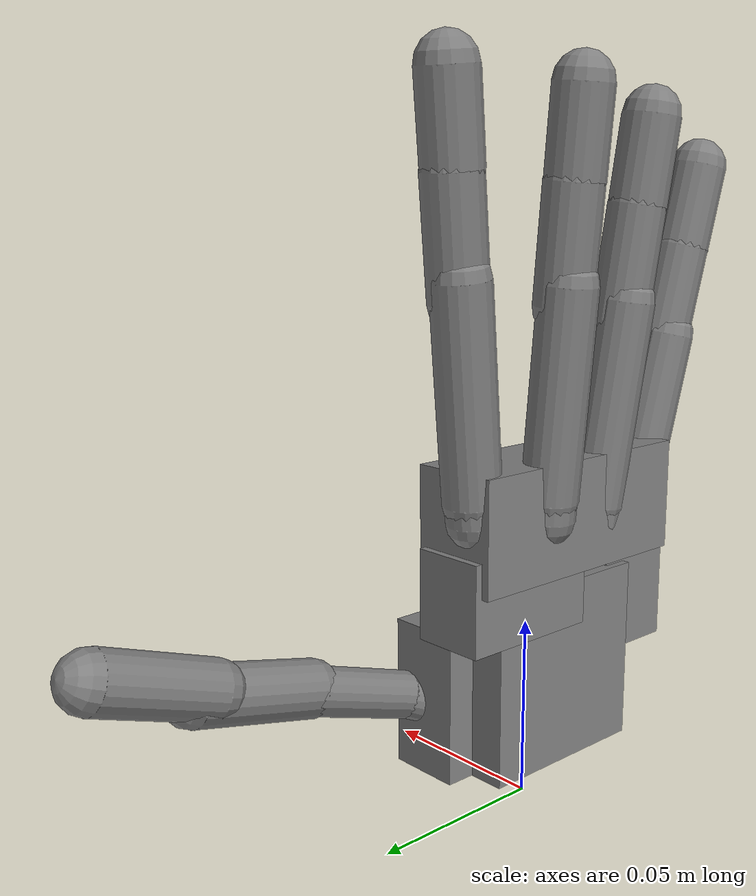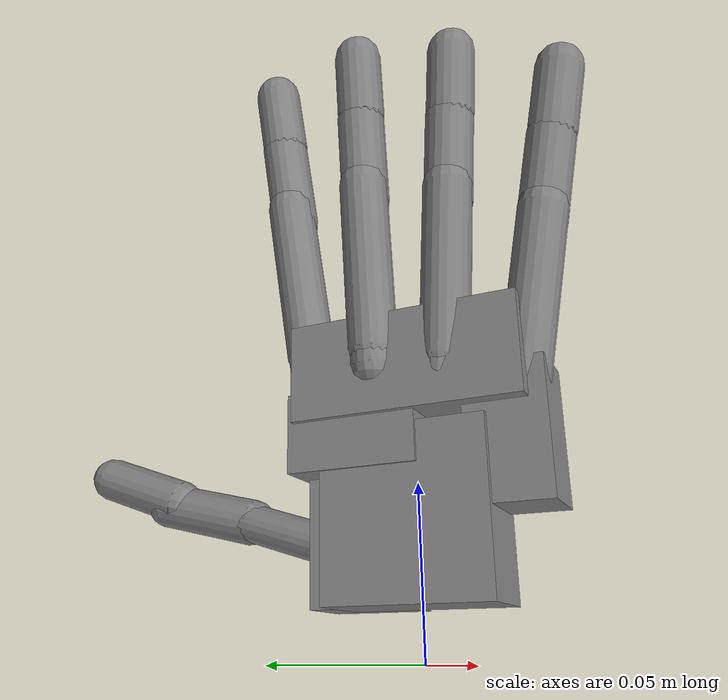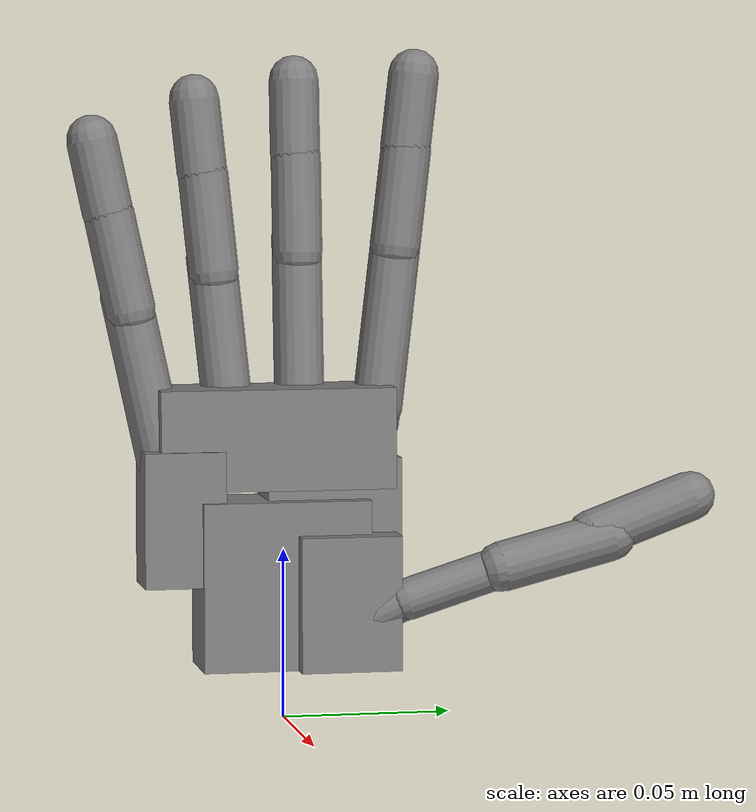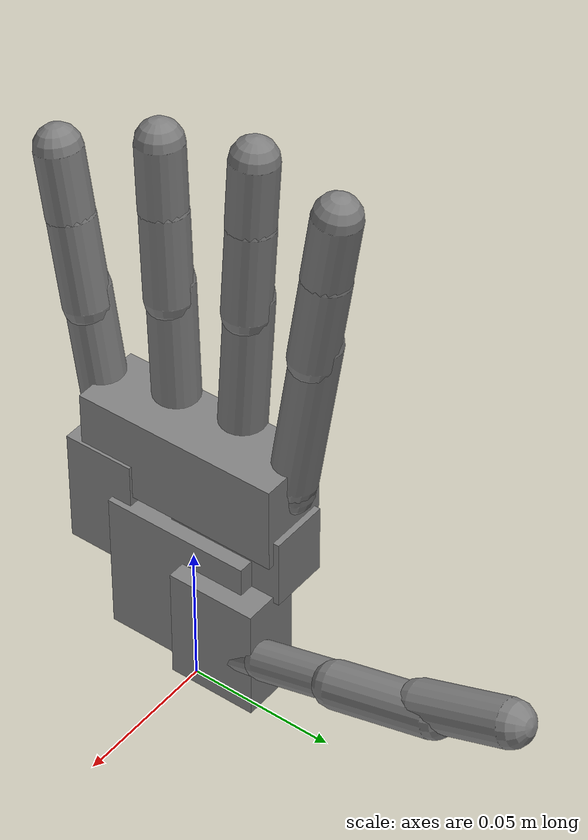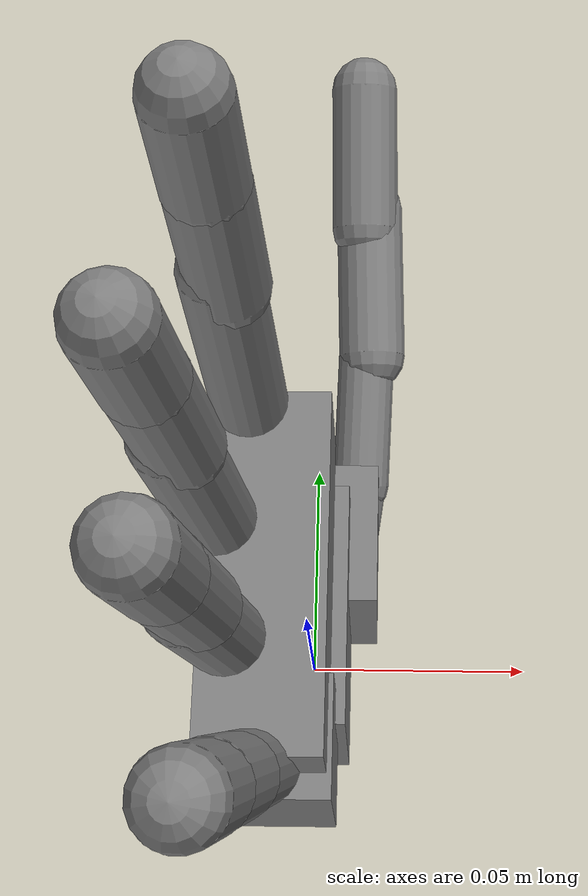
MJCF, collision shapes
<mujoco model="wujihand-right-mjx">
  <compiler angle="radian" meshdir="../meshes/right/" />

    <option timestep="0.01" integrator="Euler" iterations="5" ls_iterations="8">
    <flag eulerdamp="disable"/>
  </option>

  <custom>
    <numeric data="20" name="max_contact_points"/>
    <numeric data="16" name="max_geom_pairs"/>
  </custom>

    <default>
    <geom group="3" friction="0.2" solref="0.02 1.5" solimp="0.9 0.95 0.001" priority="1"/>
    <joint axis="0 0 1" damping="0" armature="0.0002"/>
  </default>

  <asset>
    <mesh name="right_palm_link" content_type="model/stl" file="right_palm_link.STL" />
    <mesh name="right_finger1_link1" content_type="model/stl" file="right_finger1_link1.STL" />
    <mesh name="right_finger1_link2" content_type="model/stl" file="right_finger1_link2.STL" />
    <mesh name="right_finger1_link3" content_type="model/stl" file="right_finger1_link3.STL" />
    <mesh name="right_finger1_link4" content_type="model/stl" file="right_finger1_link4.STL" />
    <mesh name="right_finger1_tip_link" content_type="model/stl" file="right_finger1_tip_link.STL" />
    <mesh name="right_finger2_link1" content_type="model/stl" file="right_finger2_link1.STL" />
    <mesh name="right_finger2_link2" content_type="model/stl" file="right_finger2_link2.STL" />
    <mesh name="right_finger2_link3" content_type="model/stl" file="right_finger2_link3.STL" />
    <mesh name="right_finger2_link4" content_type="model/stl" file="right_finger2_link4.STL" />
    <mesh name="right_finger2_tip_link" content_type="model/stl" file="right_finger2_tip_link.STL" />
    <mesh name="right_finger3_link1" content_type="model/stl" file="right_finger3_link1.STL" />
    <mesh name="right_finger3_link2" content_type="model/stl" file="right_finger3_link2.STL" />
    <mesh name="right_finger3_link3" content_type="model/stl" file="right_finger3_link3.STL" />
    <mesh name="right_finger3_link4" content_type="model/stl" file="right_finger3_link4.STL" />
    <mesh name="right_finger3_tip_link" content_type="model/stl" file="right_finger3_tip_link.STL" />
    <mesh name="right_finger4_link1" content_type="model/stl" file="right_finger4_link1.STL" />
    <mesh name="right_finger4_link2" content_type="model/stl" file="right_finger4_link2.STL" />
    <mesh name="right_finger4_link3" content_type="model/stl" file="right_finger4_link3.STL" />
    <mesh name="right_finger4_link4" content_type="model/stl" file="right_finger4_link4.STL" />
    <mesh name="right_finger4_tip_link" content_type="model/stl" file="right_finger4_tip_link.STL" />
    <mesh name="right_finger5_link1" content_type="model/stl" file="right_finger5_link1.STL" />
    <mesh name="right_finger5_link2" content_type="model/stl" file="right_finger5_link2.STL" />
    <mesh name="right_finger5_link3" content_type="model/stl" file="right_finger5_link3.STL" />
    <mesh name="right_finger5_link4" content_type="model/stl" file="right_finger5_link4.STL" />
    <mesh name="right_finger5_tip_link" content_type="model/stl" file="right_finger5_tip_link.STL" />
  </asset>

  <worldbody>
    <body name="right_palm_link"><inertial pos="-0.00297947143114252 0.000455717622711663 0.0366540864104669" mass="0.16914" quat="-0.01772809 -0.04274722 0.09308295 0.99458230" diaginertia="1.40677446e-04 9.58896475e-05 5.81329061e-05" /><geom type="mesh" contype="0" conaffinity="0" group="1" density="0" rgba="0.6 0.8 0.9 1" mesh="right_palm_link" />
          <geom name="right_palm_main" type="box" pos="-0.006 -0.002 0.083" size="0.012 0.035 0.015" friction="0.7"/>
      <geom name="right_palm_lower" type="box" pos="-0.003 0.0 0.04" size="0.012 0.025 0.025" friction="0.7"/>
      <geom name="right_palm_thumb" type="box" pos="0.005 0.018 0.035" size="0.010 0.015 0.020" friction="0.7"/>
      <geom name="right_palm_upper" type="box" pos="-0.006 0.015 0.065" size="0.010 0.020 0.012" friction="0.7"/>
      <geom name="right_palm_pinky" type="box" pos="-0.003 -0.030 0.060" size="0.010 0.012 0.020" friction="0.7"/>
    <body name="right_finger1_link1" pos="0.00843985 0.0205866 0.0288928" quat="0.682211 -0.617678 0.0805082 -0.382859">
      <inertial pos="-0.00246282 -0.00124281 0.00778015" quat="0.904243 0.21652 0.0443878 -0.365368" mass="0.0075" diaginertia="3.37599e-07 3.01198e-07 2.11203e-07" />
      <joint name="right_finger1_joint1" pos="0 0 0" axis="0 1 0" range="0.0368 1.6125" actuatorfrcrange="-0.4452 0.4452" armature="0.0005" />
      <geom type="mesh" contype="0" conaffinity="0" group="1" density="0" rgba="0.7 0.7 0.7 1" mesh="right_finger1_link1" />
            <geom name="right_finger1_link1_col" type="capsule" size="0.006" fromto="0 0 0 -0.005 -0.006 0.014"/>
      <body name="right_finger1_link2" pos="-0.0047549 -0.00581914 0.0141321" quat="0.726254 0.29085 -0.0855876 -0.616957">
        <inertial pos="-0.00116284 1.22067e-05 0.0156645" quat="0.815906 0.0024483 -0.00462559 0.57816" mass="0.0248" diaginertia="2.81725e-06 2.75299e-06 6.79766e-07" />
        <joint name="right_finger1_joint2" pos="0 0 0" axis="0 1 0" range="-0.1576 0.9312" actuatorfrcrange="-0.4259 0.4259" armature="0.0005" />
        <geom type="mesh" contype="0" conaffinity="0" group="1" density="0" rgba="0.9 0.8 0.6 1" mesh="right_finger1_link2" />
              <geom name="right_finger1_link2_col" type="capsule" size="0.0063" fromto="0 0 0 0 0.001 0.035"/>
        <body name="right_finger1_link3" pos="-0.00026671 0.000991502 0.0346656" quat="0.815739 0.0150036 0.0212382 0.577836">
          <inertial pos="-0.00112353 -1.57896e-05 0.0130562" quat="0.999951 0 0.00989566 0" mass="0.0165" diaginertia="1.4604e-06 1.42e-06 4.49604e-07" />
          <joint name="right_finger1_joint3" pos="0 0 0" axis="0 1 0" range="-0.4638 1.5607" actuatorfrcrange="-0.1888 0.1888" />
          <geom type="mesh" contype="0" conaffinity="0" group="1" density="0" rgba="0.6 0.8 0.9 1" mesh="right_finger1_link3" />
                <geom name="right_finger1_link3_col" type="capsule" size="0.0075" fromto="0.001149 0.000087 -0.004967 -0.001675 0.00244 0.029351"/>
          <body name="right_finger1_link4" pos="0 0.0002 0.0295">
            <inertial pos="-0.00158018 -0.000195004 0.0113497" quat="0.70461 -0.0483742 -0.0463361 0.706426" mass="0.0206" diaginertia="2.59896e-06 2.57899e-06 7.60001e-07" />
            <joint name="right_finger1_joint4" pos="0 0 0" axis="0 1 0" range="-0.4829 1.5451" actuatorfrcrange="-0.1468 0.1468" />
            <geom type="mesh" contype="0" conaffinity="0" group="1" density="0" rgba="0.6 0.8 0.9 1" mesh="right_finger1_link4" />
                  <geom name="right_finger1_link4_col" type="capsule" size="0.0075" fromto="-0.001 0 -0.005 -0.001 0 0.027" friction="0.7"/>
            <geom pos="-0.00105 -0.0002 0.0273" type="mesh" contype="0" conaffinity="0" group="1" density="0" rgba="0.6 0.8 0.9 1" mesh="right_finger1_tip_link" />

          </body>
        </body>
      </body>
    </body>
    <body name="right_finger2_link1" pos="-0.00587009 0.0294339 0.0919165" quat="0.991689 -0.0588292 -0.0292755 -0.110616">
      <inertial pos="-0.00132915 -3.29106e-08 0.000319873" quat="0.92388 0 0.382683 0" mass="0.0032" diaginertia="1.1e-07 7e-08 5e-08" />
      <joint name="right_finger2_joint1" pos="0 0 0" axis="0 1 0" range="-0.1611 1.5588" actuatorfrcrange="-0.6188 0.6188" armature="0.0005" />
      <geom type="mesh" contype="0" conaffinity="0" group="1" density="0" rgba="0.7 0.7 0.7 1" mesh="right_finger2_link1" />
            <geom name="right_finger2_link1_col" type="capsule" size="0.007" fromto="-0.004 0 -0.006 -0.004 0 0.008"/>
      <body name="right_finger2_link2" pos="0.0022 0 0.00400001" quat="0.707107 0 0 0.707107">
        <inertial pos="-4.1182e-07 0.00615772 0.0209112" quat="0.70703 0.0104245 0.0104245 0.70703" mass="0.033" diaginertia="6.34e-06 6.31472e-06 8.85281e-07" />
        <joint name="right_finger2_joint2" pos="0 0 0" axis="0 1 0" range="-0.4044 0.3054" actuatorfrcrange="-0.1822 0.1822" />
        <geom type="mesh" contype="0" conaffinity="0" group="1" density="0" rgba="0.9 0.8 0.6 1" mesh="right_finger2_link2" />
              <geom name="right_finger2_link2_col" type="capsule" size="0.0075" fromto="0 0.006 -0.005 0 0.006 0.049"/>
        <body name="right_finger2_link3" pos="0 0.00475028 0.0436177" quat="0.707012 0 0 -0.707202">
          <inertial pos="-0.00112142 4.36128e-06 0.0157628" quat="0.999892 0 -0.0146884 0" mass="0.0165" diaginertia="1.47088e-06 1.44e-06 4.49118e-07" />
          <joint name="right_finger2_joint3" pos="0 0 0" axis="0 1 0" range="-0.4714 1.5504" actuatorfrcrange="-0.2251 0.2251" />
          <geom type="mesh" contype="0" conaffinity="0" group="1" density="0" rgba="0.6 0.8 0.9 1" mesh="right_finger2_link3" />
                <geom name="right_finger2_link3_col" type="capsule" size="0.0075" fromto="0 0 0 0 0 0.0295"/>
          <body name="right_finger2_link4" pos="0 -0.0002 0.0295">
            <inertial pos="-0.000803077 -1.67703e-05 0.00770942" quat="0.998113 0.0132268 -0.0537103 0.0266451" mass="0.01718" diaginertia="1.58809e-06 1.49171e-06 4.20573e-07" />
            <joint name="right_finger2_joint4" pos="0 0 0" axis="0 1 0" range="-0.4644 1.5753" actuatorfrcrange="-0.217 0.217" />
            <geom type="mesh" contype="0" conaffinity="0" group="1" density="0" rgba="0.6 0.8 0.9 1" mesh="right_finger2_link4" />
                  <geom name="right_finger2_link4_col" type="capsule" size="0.0075" fromto="0 0 0 0 0 0.022" friction="0.7"/>
            <geom pos="-0.00105 0.0002 0.0267" type="mesh" contype="0" conaffinity="0" group="1" density="0" rgba="0.6 0.8 0.9 1" mesh="right_finger2_tip_link" />

          </body>
        </body>
      </body>
    </body>
    <body name="right_finger3_link1" pos="-0.0104597 0.00746146 0.0895435" quat="0.999048 -1.2685e-05 -0.0436194 0.000290548">
      <inertial pos="-0.00132914 3.4987e-09 0.000319937" quat="0.92388 0 0.382683 0" mass="0.0032" diaginertia="1.1e-07 7e-08 5e-08" />
      <joint name="right_finger3_joint1" pos="0 0 0" axis="0 1 0" range="-0.1719 1.5496" actuatorfrcrange="-0.6494 0.6494" armature="0.0005" />
      <geom type="mesh" contype="0" conaffinity="0" group="1" density="0" rgba="0.7 0.7 0.7 1" mesh="right_finger3_link1" />
            <geom name="right_finger3_link1_col" type="capsule" size="0.007" fromto="-0.004 0 -0.006 -0.004 0 0.008"/>
      <body name="right_finger3_link2" pos="0.0022 0 0.00400001" quat="0.707107 0 0 0.707107">
        <inertial pos="-4.16442e-07 0.00615758 0.0209112" quat="0.70703 0.0104245 0.0104245 0.70703" mass="0.033" diaginertia="6.34e-06 6.31472e-06 8.85281e-07" />
        <joint name="right_finger3_joint2" pos="0 0 0" axis="0 1 0" range="-0.4014 0.2996" actuatorfrcrange="-0.1827 0.1827" />
        <geom type="mesh" contype="0" conaffinity="0" group="1" density="0" rgba="0.9 0.8 0.6 1" mesh="right_finger3_link2" />
              <geom name="right_finger3_link2_col" type="capsule" size="0.0075" fromto="0 0.006 -0.005 0 0.006 0.049"/>
        <body name="right_finger3_link3" pos="0 0.00475 0.0436177" quat="0.707012 0 0 -0.707202">
          <inertial pos="-0.00112142 4.33099e-06 0.0157628" quat="0.999892 0 -0.0146884 0" mass="0.0165" diaginertia="1.47088e-06 1.44e-06 4.49118e-07" />
          <joint name="right_finger3_joint3" pos="0 0 0" axis="0 1 0" range="-0.4632 1.5613" actuatorfrcrange="-0.2078 0.2078" />
          <geom type="mesh" contype="0" conaffinity="0" group="1" density="0" rgba="0.6 0.8 0.9 1" mesh="right_finger3_link3" />
                <geom name="right_finger3_link3_col" type="capsule" size="0.0075" fromto="0 0 0 0 0 0.0295"/>
          <body name="right_finger3_link4" pos="0 -0.0002 0.0295">
            <inertial pos="-0.000801144 -1.7052e-05 0.00761196" quat="0.998033 0.0128625 -0.0554378 0.0263073" mass="0.01718" diaginertia="1.55453e-06 1.45763e-06 4.20205e-07" />
            <joint name="right_finger3_joint4" pos="0 0 0" axis="0 1 0" range="-0.4697 1.5702" actuatorfrcrange="-0.2018 0.2018" />
            <geom type="mesh" contype="0" conaffinity="0" group="1" density="0" rgba="0.6 0.8 0.9 1" mesh="right_finger3_link4" />
                  <geom name="right_finger3_link4_col" type="capsule" size="0.0075" fromto="0 0 0 0 0 0.022" friction="0.7"/>
            <geom pos="-0.00104909 0.00020104 0.0267" type="mesh" contype="0" conaffinity="0" group="1" density="0" rgba="0.6 0.8 0.9 1" mesh="right_finger3_tip_link" />

          </body>
        </body>
      </body>
    </body>
    <body name="right_finger4_link1" pos="-0.00766486 -0.0137122 0.0844287" quat="0.997789 0.0461017 -0.0405881 0.0254">
      <inertial pos="-0.00132914 1.00475e-08 0.000319948" quat="0.92388 0 0.382683 0" mass="0.0032" diaginertia="1.1e-07 7e-08 5e-08" />
      <joint name="right_finger4_joint1" pos="0 0 0" axis="0 1 0" range="-0.1601 1.5534" actuatorfrcrange="-0.6389 0.6389" armature="0.0005" />
      <geom type="mesh" contype="0" conaffinity="0" group="1" density="0" rgba="0.7 0.7 0.7 1" mesh="right_finger4_link1" />
            <geom name="right_finger4_link1_col" type="capsule" size="0.007" fromto="-0.004 0 -0.006 -0.004 0 0.008"/>
      <body name="right_finger4_link2" pos="0.0022 0 0.00400001" quat="0.707107 0 0 0.707107">
        <inertial pos="-4.16197e-07 0.00615758 0.0209112" quat="0.70703 0.0104245 0.0104245 0.70703" mass="0.033" diaginertia="6.34e-06 6.31472e-06 8.85281e-07" />
        <joint name="right_finger4_joint2" pos="0 0 0" axis="0 1 0" range="-0.4134 0.3161" actuatorfrcrange="-0.1832 0.1832" />
        <geom type="mesh" contype="0" conaffinity="0" group="1" density="0" rgba="0.9 0.8 0.6 1" mesh="right_finger4_link2" />
              <geom name="right_finger4_link2_col" type="capsule" size="0.0075" fromto="0 0.006 -0.005 0 0.006 0.049"/>
        <body name="right_finger4_link3" pos="0 0.00475 0.0436177" quat="0.707012 0 0 -0.707202">
          <inertial pos="-0.00112141 4.34937e-06 0.0157628" quat="0.999892 0 -0.0146884 0" mass="0.0165" diaginertia="1.47088e-06 1.44e-06 4.49118e-07" />
          <joint name="right_finger4_joint3" pos="0 0 0" axis="0 1 0" range="-0.4782 1.5448" actuatorfrcrange="-0.2249 0.2249" />
          <geom type="mesh" contype="0" conaffinity="0" group="1" density="0" rgba="0.6 0.8 0.9 1" mesh="right_finger4_link3" />
                <geom name="right_finger4_link3_col" type="capsule" size="0.0075" fromto="0 0 0 0 0 0.0295"/>
          <body name="right_finger4_link4" pos="0 -0.0002 0.0295">
            <inertial pos="-0.000801413 -2.37496e-05 0.00770949" quat="0.998083 0.0137537 -0.0536109 0.0276923" mass="0.01718" diaginertia="1.58832e-06 1.49181e-06 4.20836e-07" />
            <joint name="right_finger4_joint4" pos="0 0 0" axis="0 1 0" range="-0.4825 1.555" actuatorfrcrange="-0.2044 0.2044" />
            <geom type="mesh" contype="0" conaffinity="0" group="1" density="0" rgba="0.6 0.8 0.9 1" mesh="right_finger4_link4" />
                  <geom name="right_finger4_link4_col" type="capsule" size="0.0075" fromto="0 0 0 0 0 0.022" friction="0.7"/>
            <geom pos="-0.00105961 0.000190451 0.0267" type="mesh" contype="0" conaffinity="0" group="1" density="0" rgba="0.6 0.8 0.9 1" mesh="right_finger4_tip_link" />

          </body>
        </body>
      </body>
    </body>
    <body name="right_finger5_link1" pos="-0.00226865 -0.0340011 0.0742813" quat="0.990869 0.0993173 -0.0383255 0.0827362">
      <inertial pos="-0.00132914 1.72348e-08 0.000319969" quat="0.92388 0 0.382683 0" mass="0.0032" diaginertia="1.1e-07 7e-08 5e-08" />
      <joint name="right_finger5_joint1" pos="0 0 0" axis="0 1 0" range="-0.1674 1.5539" actuatorfrcrange="-0.6441 0.6441" armature="0.0005" />
      <geom type="mesh" contype="0" conaffinity="0" group="1" density="0" rgba="0.7 0.7 0.7 1" mesh="right_finger5_link1" />
            <geom name="right_finger5_link1_col" type="capsule" size="0.007" fromto="-0.004 0 -0.006 -0.004 0 0.008"/>
      <body name="right_finger5_link2" pos="0.0022 0 0.00400001" quat="0.707107 0 0 0.707107">
        <inertial pos="-4.14939e-07 0.00615759 0.0209112" quat="0.70703 0.0104245 0.0104245 0.70703" mass="0.033" diaginertia="6.34e-06 6.31472e-06 8.85281e-07" />
        <joint name="right_finger5_joint2" pos="0 0 0" axis="0 1 0" range="-0.4203 0.2931" actuatorfrcrange="-0.1798 0.1798" />
        <geom type="mesh" contype="0" conaffinity="0" group="1" density="0" rgba="0.9 0.8 0.6 1" mesh="right_finger5_link2" />
              <geom name="right_finger5_link2_col" type="capsule" size="0.0075" fromto="0 0.006 -0.005 0 0.006 0.049"/>
        <body name="right_finger5_link3" pos="0 0.00475 0.0436177" quat="0.707012 0 0 -0.707202">
          <inertial pos="-0.00112141 4.37031e-06 0.0157628" quat="0.999892 0 -0.0146884 0" mass="0.0165" diaginertia="1.47088e-06 1.44e-06 4.49118e-07" />
          <joint name="right_finger5_joint3" pos="0 0 0" axis="0 1 0" range="-0.4804 1.542" actuatorfrcrange="-0.2384 0.2384" />
          <geom type="mesh" contype="0" conaffinity="0" group="1" density="0" rgba="0.6 0.8 0.9 1" mesh="right_finger5_link3" />
                <geom name="right_finger5_link3_col" type="capsule" size="0.0075" fromto="0 0 0 0 0 0.0295"/>
          <body name="right_finger5_link4" pos="0 -0.0002 0.0295">
            <inertial pos="-0.000805572 -1.62002e-05 0.0077094" quat="0.998111 0.0131911 -0.0538918 0.0263751" mass="0.01718" diaginertia="1.58815e-06 1.49167e-06 4.20431e-07" />
            <joint name="right_finger5_joint4" pos="0 0 0" axis="0 1 0" range="-0.4705 1.5709" actuatorfrcrange="-0.1866 0.1866" />
            <geom type="mesh" contype="0" conaffinity="0" group="1" density="0" rgba="0.6 0.8 0.9 1" mesh="right_finger5_link4" />
                  <geom name="right_finger5_link4_col" type="capsule" size="0.0075" fromto="0 0 0 0 0 0.022" friction="0.7"/>
            <geom pos="-0.00104464 0.00021131 0.0267" type="mesh" contype="0" conaffinity="0" group="1" density="0" rgba="0.6 0.8 0.9 1" mesh="right_finger5_tip_link" />

          </body>
        </body>
      </body>
    </body>
  </body></worldbody>

  <contact>
    <exclude body1="right_palm_link" body2="right_finger1_link1"/>
    <exclude body1="right_palm_link" body2="right_finger2_link1"/>
    <exclude body1="right_palm_link" body2="right_finger3_link1"/>
    <exclude body1="right_palm_link" body2="right_finger4_link1"/>
    <exclude body1="right_palm_link" body2="right_finger5_link1"/>
    <exclude body1="right_palm_link" body2="right_finger1_link2"/>
    <exclude body1="right_palm_link" body2="right_finger2_link2"/>
    <exclude body1="right_palm_link" body2="right_finger3_link2"/>
    <exclude body1="right_palm_link" body2="right_finger4_link2"/>
    <exclude body1="right_palm_link" body2="right_finger5_link2"/>
    <exclude body1="right_finger2_link1" body2="right_finger3_link1"/>
    <exclude body1="right_finger3_link1" body2="right_finger4_link1"/>
    <exclude body1="right_finger4_link1" body2="right_finger5_link1"/>
  </contact>
  <actuator>
    <position name="right_finger1_joint1_actuator" joint="right_finger1_joint1" kp="0.40844710645048043" kv="0.020882010257063675" ctrlrange="0.0368 1.613" forcerange="-0.4452 0.4452" />
    <position name="right_finger1_joint2_actuator" joint="right_finger1_joint2" kp="0.6858601063643346" kv="0.030610939996373314" ctrlrange="-0.1576 0.9312" forcerange="-0.4259 0.4259" />
    <position name="right_finger1_joint3_actuator" joint="right_finger1_joint3" kp="0.2391112196099482" kv="0.010181475050560962" ctrlrange="-0.4638 1.561" forcerange="-0.1888 0.1888" />
    <position name="right_finger1_joint4_actuator" joint="right_finger1_joint4" kp="0.20736128319711747" kv="0.00909698844675045" ctrlrange="-0.4829 1.545" forcerange="-0.1468 0.1468" />
    <position name="right_finger2_joint1_actuator" joint="right_finger2_joint1" kp="0.37352218155860073" kv="0.01882274330029718" ctrlrange="-0.1611 1.559" forcerange="-0.6188 0.6188" />
    <position name="right_finger2_joint2_actuator" joint="right_finger2_joint2" kp="0.45592448909027794" kv="0.019798167597016643" ctrlrange="-0.4044 0.3054" forcerange="-0.1822 0.1822" />
    <position name="right_finger2_joint3_actuator" joint="right_finger2_joint3" kp="0.24368366649522863" kv="0.010477031953162727" ctrlrange="-0.4714 1.55" forcerange="-0.2251 0.2251" />
    <position name="right_finger2_joint4_actuator" joint="right_finger2_joint4" kp="0.18026971340925335" kv="0.008240212147903584" ctrlrange="-0.4644 1.575" forcerange="-0.217 0.217" />
    <position name="right_finger3_joint1_actuator" joint="right_finger3_joint1" kp="0.3687093483646485" kv="0.01848622487024593" ctrlrange="-0.1719 1.55" forcerange="-0.6494 0.6494" />
    <position name="right_finger3_joint2_actuator" joint="right_finger3_joint2" kp="0.4164253443634641" kv="0.018032947229953678" ctrlrange="-0.4014 0.2996" forcerange="-0.1827 0.1827" />
    <position name="right_finger3_joint3_actuator" joint="right_finger3_joint3" kp="0.22218607502059182" kv="0.009592200014076666" ctrlrange="-0.4632 1.561" forcerange="-0.2078 0.2078" />
    <position name="right_finger3_joint4_actuator" joint="right_finger3_joint4" kp="0.19427606072023446" kv="0.009152994605972402" ctrlrange="-0.4697 1.57" forcerange="-0.2018 0.2018" />
    <position name="right_finger4_joint1_actuator" joint="right_finger4_joint1" kp="0.35718151495111794" kv="0.018376606800780005" ctrlrange="-0.1601 1.553" forcerange="-0.6389 0.6389" />
    <position name="right_finger4_joint2_actuator" joint="right_finger4_joint2" kp="0.42977315313086895" kv="0.01867700966212433" ctrlrange="-0.4134 0.3161" forcerange="-0.1832 0.1832" />
    <position name="right_finger4_joint3_actuator" joint="right_finger4_joint3" kp="0.24930151196247122" kv="0.01059512121009555" ctrlrange="-0.4782 1.545" forcerange="-0.2249 0.2249" />
    <position name="right_finger4_joint4_actuator" joint="right_finger4_joint4" kp="0.2285032688178066" kv="0.009917602877441107" ctrlrange="-0.4825 1.555" forcerange="-0.2044 0.2044" />
    <position name="right_finger5_joint1_actuator" joint="right_finger5_joint1" kp="0.3655325975433942" kv="0.018616960278988272" ctrlrange="-0.1674 1.554" forcerange="-0.6441 0.6441" />
    <position name="right_finger5_joint2_actuator" joint="right_finger5_joint2" kp="0.41393113081120425" kv="0.018732177029667153" ctrlrange="-0.4203 0.2931" forcerange="-0.1798 0.1798" />
    <position name="right_finger5_joint3_actuator" joint="right_finger5_joint3" kp="0.22729367621965954" kv="0.00951005441616486" ctrlrange="-0.4804 1.542" forcerange="-0.2384 0.2384" />
    <position name="right_finger5_joint4_actuator" joint="right_finger5_joint4" kp="0.1964723550341816" kv="0.009017295241756363" ctrlrange="-0.4705 1.571" forcerange="-0.1866 0.1866" />
  </actuator>
</mujoco>
